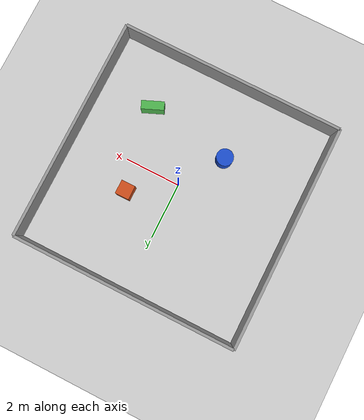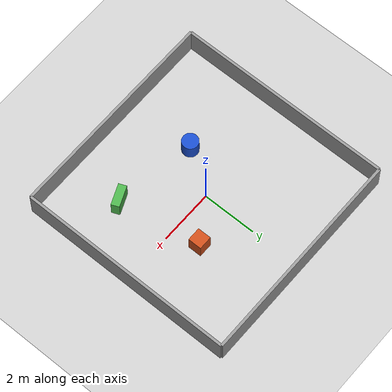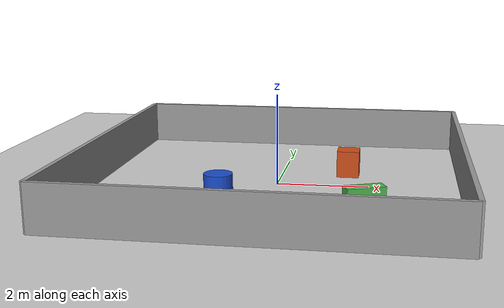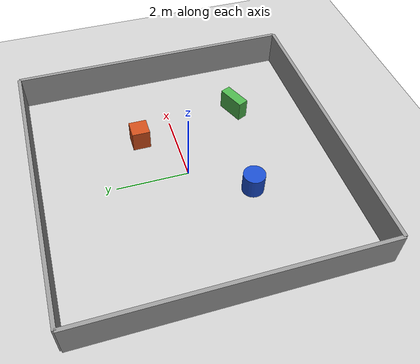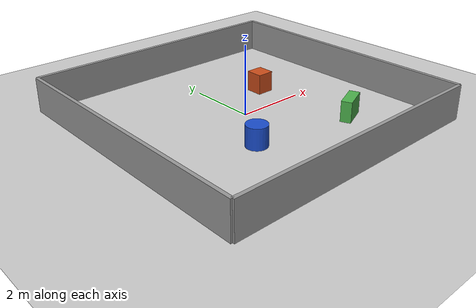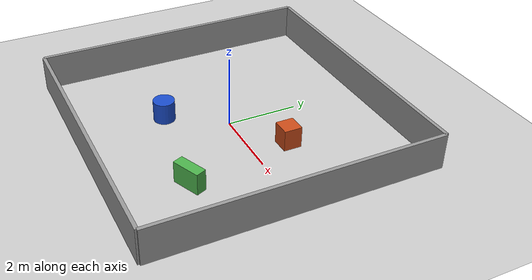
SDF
<?xml version="1.0" ?>
<sdf version="1.6">
  <world name="empty">
    <physics name="1ms" type="ignored">
      <max_step_size>0.001</max_step_size>
      <real_time_factor>1.0</real_time_factor>
    </physics>
    <plugin
      filename="gz-sim-physics-system"
      name="gz::sim::systems::Physics">
    </plugin>
    <plugin
      filename="gz-sim-user-commands-system"
      name="gz::sim::systems::UserCommands">
    </plugin>
    <plugin
      filename="gz-sim-scene-broadcaster-system"
      name="gz::sim::systems::SceneBroadcaster">
    </plugin>
    <plugin
      filename="gz-sim-contact-system"
      name="gz::sim::systems::Contact">
    </plugin>
    <plugin
      filename="gz-sim-sensors-system"
      name="gz::sim::systems::Sensors">
      <render_engine>ogre2</render_engine>
    </plugin>
    <plugin
      filename="gz-sim-imu-system"
      name="gz::sim::systems::Imu">
    </plugin>
    <light type="directional" name="sun">
      <cast_shadows>true</cast_shadows>
      <pose>0 0 10 0 0 0</pose>
      <diffuse>0.8 0.8 0.8 1</diffuse>
      <specular>0.2 0.2 0.2 1</specular>
      <attenuation>
        <range>1000</range>
        <constant>0.9</constant>
        <linear>0.01</linear>
        <quadratic>0.001</quadratic>
      </attenuation>
      <direction>-0.5 0.1 -0.9</direction>
    </light>
    <model name="ground_plane">
      <static>true</static>
      <link name="link">
        <collision name="collision">
          <geometry>
            <plane>
              <normal>0 0 1</normal>
              <size>100 100</size>
            </plane>
          </geometry>
        </collision>
        <visual name="visual">
          <geometry>
            <plane>
              <normal>0 0 1</normal>
              <size>100 100</size>
            </plane>
          </geometry>
          <material>
            <ambient>0.8 0.8 0.8 1</ambient>
            <diffuse>0.8 0.8 0.8 1</diffuse>
            <specular>0.8 0.8 0.8 1</specular>
          </material>
        </visual>
      </link>
    </model>

        <!-- Perimeter walls forming a simple room -->
    <model name="wall_north">
      <static>true</static>
      <pose>0 4 0.5 0 0 0</pose>
      <link name="link">
        <collision name="collision">
          <geometry><box><size>8 0.1 1</size></box></geometry>
        </collision>
        <visual name="visual">
          <geometry><box><size>8 0.1 1</size></box></geometry>
          <material><ambient>0.6 0.6 0.6 1</ambient><diffuse>0.6 0.6 0.6 1</diffuse></material>
        </visual>
      </link>
    </model>

    <model name="wall_south">
      <static>true</static>
      <pose>0 -4 0.5 0 0 0</pose>
      <link name="link">
        <collision name="collision">
          <geometry><box><size>8 0.1 1</size></box></geometry>
        </collision>
        <visual name="visual">
          <geometry><box><size>8 0.1 1</size></box></geometry>
          <material><ambient>0.6 0.6 0.6 1</ambient><diffuse>0.6 0.6 0.6 1</diffuse></material>
        </visual>
      </link>
    </model>

    <model name="wall_east">
      <static>true</static>
      <pose>4 0 0.5 0 0 1.5708</pose>
      <link name="link">
        <collision name="collision">
          <geometry><box><size>8 0.1 1</size></box></geometry>
        </collision>
        <visual name="visual">
          <geometry><box><size>8 0.1 1</size></box></geometry>
          <material><ambient>0.6 0.6 0.6 1</ambient><diffuse>0.6 0.6 0.6 1</diffuse></material>
        </visual>
      </link>
    </model>

    <model name="wall_west">
      <static>true</static>
      <pose>-4 0 0.5 0 0 1.5708</pose>
      <link name="link">
        <collision name="collision">
          <geometry><box><size>8 0.1 1</size></box></geometry>
        </collision>
        <visual name="visual">
          <geometry><box><size>8 0.1 1</size></box></geometry>
          <material><ambient>0.6 0.6 0.6 1</ambient><diffuse>0.6 0.6 0.6 1</diffuse></material>
        </visual>
      </link>
    </model>

    <!-- A few scattered obstacles inside the room -->
    <model name="obstacle_1">
      <static>true</static>
      <pose>1.5 1.0 0.3 0 0 0</pose>
      <link name="link">
        <collision name="collision">
          <geometry><box><size>0.5 0.5 0.6</size></box></geometry>
        </collision>
        <visual name="visual">
          <geometry><box><size>0.5 0.5 0.6</size></box></geometry>
          <material><ambient>0.8 0.3 0.1 1</ambient><diffuse>0.8 0.3 0.1 1</diffuse></material>
        </visual>
      </link>
    </model>

    <model name="obstacle_2">
      <static>true</static>
      <pose>-1.0 -1.5 0.3 0 0 0</pose>
      <link name="link">
        <collision name="collision">
          <geometry><cylinder><radius>0.3</radius><length>0.6</length></cylinder></geometry>
        </collision>
        <visual name="visual">
          <geometry><cylinder><radius>0.3</radius><length>0.6</length></cylinder></geometry>
          <material><ambient>0.1 0.3 0.8 1</ambient><diffuse>0.1 0.3 0.8 1</diffuse></material>
        </visual>
      </link>
    </model>

    <model name="obstacle_3">
      <static>true</static>
      <pose>2.0 -2.0 0.3 0 0 0.4</pose>
      <link name="link">
        <collision name="collision">
          <geometry><box><size>0.8 0.3 0.6</size></box></geometry>
        </collision>
        <visual name="visual">
          <geometry><box><size>0.8 0.3 0.6</size></box></geometry>
          <material><ambient>0.3 0.7 0.3 1</ambient><diffuse>0.3 0.7 0.3 1</diffuse></material>
        </visual>
      </link>
    </model>

  </world>
</sdf>
